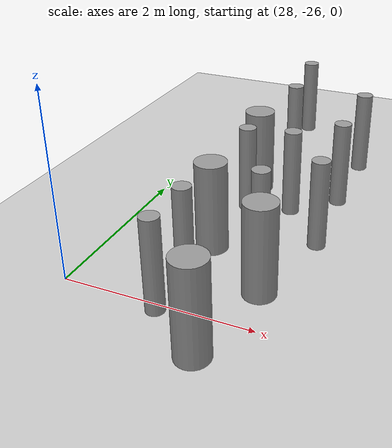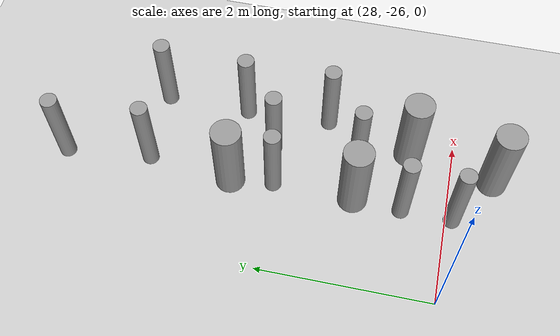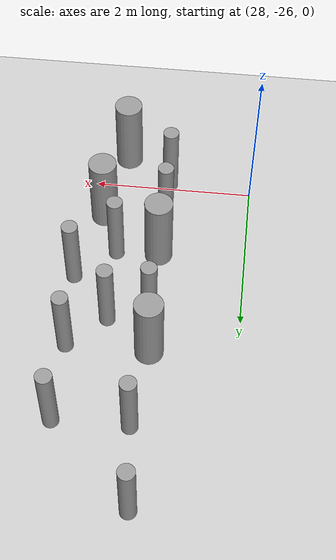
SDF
<sdf version="1.6">
 <world name="default">
  <model name="ground_plane">
   <static>1</static>
   <link name="link">
    <collision name="collision">
     <geometry><plane><normal>0 0 1</normal><size>100 100</size></plane></geometry>
     <surface><friction><ode><mu>100</mu><mu2>50</mu2></ode></friction></surface>
    </collision>
    <visual name="visual">
     <cast_shadows>0</cast_shadows>
     <geometry><plane><normal>0 0 1</normal><size>100 100</size></plane></geometry>
     <material>
      <script><uri>file://media/materials/scripts/gazebo.material</uri><name>Gazebo/Grey</name></script>
     </material>
    </visual>
   </link>
  </model>
  <model name="cyl_wall_clone_clone_1_clone_1_clone_clone_clone_0">
   <link name="link_0">
    <pose>-2.73893 -0.366465 0 0 -0 0</pose>
    <inertial>
     <mass>0.0374993</mass>
     <inertia>
      <ixx>0.00321281</ixx>
      <ixy>0</ixy>
      <ixz>0</ixz>
      <iyy>0.00321281</iyy>
      <iyz>0</iyz>
      <izz>0.000175774</izz>
     </inertia>
    </inertial>
    <visual name="visual">
     <geometry><cylinder><radius>0.0968661</radius><length>1</length></cylinder></geometry>
     <material>
      <lighting>1</lighting>
      <script><uri>file://media/materials/scripts/gazebo.material</uri><name>Gazebo/Grey</name></script>
      <ambient>0.3 0.3 0.3 1</ambient>
      <diffuse>0.7 0.7 0.7 1</diffuse>
      <specular>0.01 0.01 0.01 1</specular>
      <emissive>0 0 0 1</emissive>
     </material>
    </visual>
    <collision name="collision">
     <geometry><cylinder><radius>0.096866</radius><length>1</length></cylinder></geometry>
     <surface>
      <friction>
       <ode><mu>1</mu><mu2>1</mu2><fdir1>0 0 0</fdir1><slip1>0</slip1><slip2>0</slip2></ode>
       <torsional>
        <coefficient>1</coefficient>
        <patch_radius>0</patch_radius>
        <surface_radius>0</surface_radius>
        <use_patch_radius>1</use_patch_radius>
        <ode><slip>0</slip></ode>
       </torsional>
      </friction>
      <bounce><restitution_coefficient>0</restitution_coefficient><threshold>1e+06</threshold></bounce>
      <contact>
       <collide_without_contact>0</collide_without_contact>
       <collide_without_contact_bitmask>1</collide_without_contact_bitmask>
       <collide_bitmask>1</collide_bitmask>
       <ode>
        <soft_cfm>0</soft_cfm>
        <soft_erp>0.2</soft_erp>
        <kp>1e+13</kp>
        <kd>1</kd>
        <max_vel>0.01</max_vel>
        <min_depth>0</min_depth>
       </ode>
       <bullet>
        <split_impulse>1</split_impulse>
        <split_impulse_penetration_threshold>-0.01</split_impulse_penetration_threshold>
        <soft_cfm>0</soft_cfm>
        <soft_erp>0.2</soft_erp>
        <kp>1e+13</kp>
        <kd>1</kd>
       </bullet>
      </contact>
     </surface>
    </collision>
   </link>
   <link name="link_0_clone">
    <pose>-1.73893 0.61877 0 0 -0 0</pose>
    <inertial>
     <mass>0.0374993</mass>
     <inertia>
      <ixx>0.00321281</ixx>
      <ixy>0</ixy>
      <ixz>0</ixz>
      <iyy>0.00321281</iyy>
      <iyz>0</iyz>
      <izz>0.000175774</izz>
     </inertia>
    </inertial>
    <visual name="visual">
     <geometry><cylinder><radius>0.0968661</radius><length>1</length></cylinder></geometry>
     <material>
      <lighting>1</lighting>
      <script><uri>file://media/materials/scripts/gazebo.material</uri><name>Gazebo/Grey</name></script>
      <ambient>0.3 0.3 0.3 1</ambient>
      <diffuse>0.7 0.7 0.7 1</diffuse>
      <specular>0.01 0.01 0.01 1</specular>
      <emissive>0 0 0 1</emissive>
      <shader type="pixel"/>
     </material>
    </visual>
    <collision name="collision">
     <geometry><cylinder><radius>0.096866</radius><length>1</length></cylinder></geometry>
     <surface>
      <friction>
       <ode><mu>1</mu><mu2>1</mu2><fdir1>0 0 0</fdir1><slip1>0</slip1><slip2>0</slip2></ode>
       <torsional>
        <coefficient>1</coefficient>
        <patch_radius>0</patch_radius>
        <surface_radius>0</surface_radius>
        <use_patch_radius>1</use_patch_radius>
        <ode><slip>0</slip></ode>
       </torsional>
      </friction>
      <bounce><restitution_coefficient>0</restitution_coefficient><threshold>1e+06</threshold></bounce>
      <contact>
       <collide_without_contact>0</collide_without_contact>
       <collide_without_contact_bitmask>1</collide_without_contact_bitmask>
       <collide_bitmask>1</collide_bitmask>
       <ode>
        <soft_cfm>0</soft_cfm>
        <soft_erp>0.2</soft_erp>
        <kp>1e+13</kp>
        <kd>1</kd>
        <max_vel>0.01</max_vel>
        <min_depth>0</min_depth>
       </ode>
       <bullet>
        <split_impulse>1</split_impulse>
        <split_impulse_penetration_threshold>-0.01</split_impulse_penetration_threshold>
        <soft_cfm>0</soft_cfm>
        <soft_erp>0.2</soft_erp>
        <kp>1e+13</kp>
        <kd>1</kd>
       </bullet>
      </contact>
     </surface>
    </collision>
   </link>
   <link name="link_0_clone_clone">
    <pose>-0.327073 0.143919 0 0 -0 0</pose>
    <inertial>
     <mass>0.0374993</mass>
     <inertia>
      <ixx>0.00321281</ixx>
      <ixy>0</ixy>
      <ixz>0</ixz>
      <iyy>0.00321281</iyy>
      <iyz>0</iyz>
      <izz>0.000175774</izz>
     </inertia>
    </inertial>
    <visual name="visual">
     <geometry><cylinder><radius>0.0968661</radius><length>1</length></cylinder></geometry>
     <material>
      <lighting>1</lighting>
      <script><uri>file://media/materials/scripts/gazebo.material</uri><name>Gazebo/Grey</name></script>
      <ambient>0.3 0.3 0.3 1</ambient>
      <diffuse>0.7 0.7 0.7 1</diffuse>
      <specular>0.01 0.01 0.01 1</specular>
      <emissive>0 0 0 1</emissive>
      <shader type="pixel"/>
     </material>
    </visual>
    <collision name="collision">
     <geometry><cylinder><radius>0.096866</radius><length>1</length></cylinder></geometry>
     <surface>
      <friction>
       <ode><mu>1</mu><mu2>1</mu2><fdir1>0 0 0</fdir1><slip1>0</slip1><slip2>0</slip2></ode>
       <torsional>
        <coefficient>1</coefficient>
        <patch_radius>0</patch_radius>
        <surface_radius>0</surface_radius>
        <use_patch_radius>1</use_patch_radius>
        <ode><slip>0</slip></ode>
       </torsional>
      </friction>
      <bounce><restitution_coefficient>0</restitution_coefficient><threshold>1e+06</threshold></bounce>
      <contact>
       <collide_without_contact>0</collide_without_contact>
       <collide_without_contact_bitmask>1</collide_without_contact_bitmask>
       <collide_bitmask>1</collide_bitmask>
       <ode>
        <soft_cfm>0</soft_cfm>
        <soft_erp>0.2</soft_erp>
        <kp>1e+13</kp>
        <kd>1</kd>
        <max_vel>0.01</max_vel>
        <min_depth>0</min_depth>
       </ode>
       <bullet>
        <split_impulse>1</split_impulse>
        <split_impulse_penetration_threshold>-0.01</split_impulse_penetration_threshold>
        <soft_cfm>0</soft_cfm>
        <soft_erp>0.2</soft_erp>
        <kp>1e+13</kp>
        <kd>1</kd>
       </bullet>
      </contact>
     </surface>
    </collision>
   </link>
   <link name="link_0_clone_clone_0">
    <pose>1.26107 -0.419359 0 0 -0 0</pose>
    <inertial>
     <mass>0.0374993</mass>
     <inertia>
      <ixx>0.00321281</ixx>
      <ixy>0</ixy>
      <ixz>0</ixz>
      <iyy>0.00321281</iyy>
      <iyz>0</iyz>
      <izz>0.000175774</izz>
     </inertia>
    </inertial>
    <visual name="visual">
     <geometry><cylinder><radius>0.0968661</radius><length>1</length></cylinder></geometry>
     <material>
      <lighting>1</lighting>
      <script><uri>file://media/materials/scripts/gazebo.material</uri><name>Gazebo/Grey</name></script>
      <ambient>0.3 0.3 0.3 1</ambient>
      <diffuse>0.7 0.7 0.7 1</diffuse>
      <specular>0.01 0.01 0.01 1</specular>
      <emissive>0 0 0 1</emissive>
      <shader type="pixel"/>
     </material>
    </visual>
    <collision name="collision">
     <geometry><cylinder><radius>0.096866</radius><length>1</length></cylinder></geometry>
     <surface>
      <friction>
       <ode><mu>1</mu><mu2>1</mu2><fdir1>0 0 0</fdir1><slip1>0</slip1><slip2>0</slip2></ode>
       <torsional>
        <coefficient>1</coefficient>
        <patch_radius>0</patch_radius>
        <surface_radius>0</surface_radius>
        <use_patch_radius>1</use_patch_radius>
        <ode><slip>0</slip></ode>
       </torsional>
      </friction>
      <bounce><restitution_coefficient>0</restitution_coefficient><threshold>1e+06</threshold></bounce>
      <contact>
       <collide_without_contact>0</collide_without_contact>
       <collide_without_contact_bitmask>1</collide_without_contact_bitmask>
       <collide_bitmask>1</collide_bitmask>
       <ode>
        <soft_cfm>0</soft_cfm>
        <soft_erp>0.2</soft_erp>
        <kp>1e+13</kp>
        <kd>1</kd>
        <max_vel>0.01</max_vel>
        <min_depth>0</min_depth>
       </ode>
       <bullet>
        <split_impulse>1</split_impulse>
        <split_impulse_penetration_threshold>-0.01</split_impulse_penetration_threshold>
        <soft_cfm>0</soft_cfm>
        <soft_erp>0.2</soft_erp>
        <kp>1e+13</kp>
        <kd>1</kd>
       </bullet>
      </contact>
     </surface>
    </collision>
   </link>
   <link name="link_0_clone_clone_1">
    <pose>-1.73893 -0.277168 0 0 -0 0</pose>
    <inertial>
     <mass>0.0374993</mass>
     <inertia>
      <ixx>0.00321281</ixx>
      <ixy>0</ixy>
      <ixz>0</ixz>
      <iyy>0.00321281</iyy>
      <iyz>0</iyz>
      <izz>0.000175774</izz>
     </inertia>
    </inertial>
    <visual name="visual">
     <geometry><cylinder><radius>0.0968661</radius><length>1</length></cylinder></geometry>
     <material>
      <lighting>1</lighting>
      <script><uri>file://media/materials/scripts/gazebo.material</uri><name>Gazebo/Grey</name></script>
      <ambient>0.3 0.3 0.3 1</ambient>
      <diffuse>0.7 0.7 0.7 1</diffuse>
      <specular>0.01 0.01 0.01 1</specular>
      <emissive>0 0 0 1</emissive>
      <shader type="pixel"/>
     </material>
    </visual>
    <collision name="collision">
     <geometry><cylinder><radius>0.096866</radius><length>1</length></cylinder></geometry>
     <surface>
      <friction>
       <ode><mu>1</mu><mu2>1</mu2><fdir1>0 0 0</fdir1><slip1>0</slip1><slip2>0</slip2></ode>
       <torsional>
        <coefficient>1</coefficient>
        <patch_radius>0</patch_radius>
        <surface_radius>0</surface_radius>
        <use_patch_radius>1</use_patch_radius>
        <ode><slip>0</slip></ode>
       </torsional>
      </friction>
      <bounce><restitution_coefficient>0</restitution_coefficient><threshold>1e+06</threshold></bounce>
      <contact>
       <collide_without_contact>0</collide_without_contact>
       <collide_without_contact_bitmask>1</collide_without_contact_bitmask>
       <collide_bitmask>1</collide_bitmask>
       <ode>
        <soft_cfm>0</soft_cfm>
        <soft_erp>0.2</soft_erp>
        <kp>1e+13</kp>
        <kd>1</kd>
        <max_vel>0.01</max_vel>
        <min_depth>0</min_depth>
       </ode>
       <bullet>
        <split_impulse>1</split_impulse>
        <split_impulse_penetration_threshold>-0.01</split_impulse_penetration_threshold>
        <soft_cfm>0</soft_cfm>
        <soft_erp>0.2</soft_erp>
        <kp>1e+13</kp>
        <kd>1</kd>
       </bullet>
      </contact>
     </surface>
    </collision>
   </link>
   <link name="link_0_clone_clone_2">
    <pose>-0.738934 0.593961 0 0 -0 0</pose>
    <inertial>
     <mass>0.0374993</mass>
     <inertia>
      <ixx>0.00321281</ixx>
      <ixy>0</ixy>
      <ixz>0</ixz>
      <iyy>0.00321281</iyy>
      <iyz>0</iyz>
      <izz>0.000175774</izz>
     </inertia>
    </inertial>
    <visual name="visual">
     <geometry><cylinder><radius>0.0968661</radius><length>1</length></cylinder></geometry>
     <material>
      <lighting>1</lighting>
      <script><uri>file://media/materials/scripts/gazebo.material</uri><name>Gazebo/Grey</name></script>
      <ambient>0.3 0.3 0.3 1</ambient>
      <diffuse>0.7 0.7 0.7 1</diffuse>
      <specular>0.01 0.01 0.01 1</specular>
      <emissive>0 0 0 1</emissive>
      <shader type="pixel"/>
     </material>
    </visual>
    <collision name="collision">
     <geometry><cylinder><radius>0.096866</radius><length>1</length></cylinder></geometry>
     <surface>
      <friction>
       <ode><mu>1</mu><mu2>1</mu2><fdir1>0 0 0</fdir1><slip1>0</slip1><slip2>0</slip2></ode>
       <torsional>
        <coefficient>1</coefficient>
        <patch_radius>0</patch_radius>
        <surface_radius>0</surface_radius>
        <use_patch_radius>1</use_patch_radius>
        <ode><slip>0</slip></ode>
       </torsional>
      </friction>
      <bounce><restitution_coefficient>0</restitution_coefficient><threshold>1e+06</threshold></bounce>
      <contact>
       <collide_without_contact>0</collide_without_contact>
       <collide_without_contact_bitmask>1</collide_without_contact_bitmask>
       <collide_bitmask>1</collide_bitmask>
       <ode>
        <soft_cfm>0</soft_cfm>
        <soft_erp>0.2</soft_erp>
        <kp>1e+13</kp>
        <kd>1</kd>
        <max_vel>0.01</max_vel>
        <min_depth>0</min_depth>
       </ode>
       <bullet>
        <split_impulse>1</split_impulse>
        <split_impulse_penetration_threshold>-0.01</split_impulse_penetration_threshold>
        <soft_cfm>0</soft_cfm>
        <soft_erp>0.2</soft_erp>
        <kp>1e+13</kp>
        <kd>1</kd>
       </bullet>
      </contact>
     </surface>
    </collision>
   </link>
   <link name="link_0_clone_clone_3">
    <pose>0.261066 0.624849 0 0 -0 0</pose>
    <inertial>
     <mass>0.0374993</mass>
     <inertia>
      <ixx>0.00321281</ixx>
      <ixy>0</ixy>
      <ixz>0</ixz>
      <iyy>0.00321281</iyy>
      <iyz>0</iyz>
      <izz>0.000175774</izz>
     </inertia>
    </inertial>
    <visual name="visual">
     <geometry><cylinder><radius>0.0968661</radius><length>1</length></cylinder></geometry>
     <material>
      <lighting>1</lighting>
      <script><uri>file://media/materials/scripts/gazebo.material</uri><name>Gazebo/Grey</name></script>
      <ambient>0.3 0.3 0.3 1</ambient>
      <diffuse>0.7 0.7 0.7 1</diffuse>
      <specular>0.01 0.01 0.01 1</specular>
      <emissive>0 0 0 1</emissive>
      <shader type="pixel"/>
     </material>
    </visual>
    <collision name="collision">
     <geometry><cylinder><radius>0.096866</radius><length>1</length></cylinder></geometry>
     <surface>
      <friction>
       <ode><mu>1</mu><mu2>1</mu2><fdir1>0 0 0</fdir1><slip1>0</slip1><slip2>0</slip2></ode>
       <torsional>
        <coefficient>1</coefficient>
        <patch_radius>0</patch_radius>
        <surface_radius>0</surface_radius>
        <use_patch_radius>1</use_patch_radius>
        <ode><slip>0</slip></ode>
       </torsional>
      </friction>
      <bounce><restitution_coefficient>0</restitution_coefficient><threshold>1e+06</threshold></bounce>
      <contact>
       <collide_without_contact>0</collide_without_contact>
       <collide_without_contact_bitmask>1</collide_without_contact_bitmask>
       <collide_bitmask>1</collide_bitmask>
       <ode>
        <soft_cfm>0</soft_cfm>
        <soft_erp>0.2</soft_erp>
        <kp>1e+13</kp>
        <kd>1</kd>
        <max_vel>0.01</max_vel>
        <min_depth>0</min_depth>
       </ode>
       <bullet>
        <split_impulse>1</split_impulse>
        <split_impulse_penetration_threshold>-0.01</split_impulse_penetration_threshold>
        <soft_cfm>0</soft_cfm>
        <soft_erp>0.2</soft_erp>
        <kp>1e+13</kp>
        <kd>1</kd>
       </bullet>
      </contact>
     </surface>
    </collision>
   </link>
   <link name="link_0_clone_clone_4">
    <pose>-0.239049 -0.353105 0 0 -0 0</pose>
    <inertial>
     <mass>0.0374993</mass>
     <inertia>
      <ixx>0.00321281</ixx>
      <ixy>0</ixy>
      <ixz>0</ixz>
      <iyy>0.00321281</iyy>
      <iyz>0</iyz>
      <izz>0.000175774</izz>
     </inertia>
    </inertial>
    <visual name="visual">
     <geometry><cylinder><radius>0.0968661</radius><length>1</length></cylinder></geometry>
     <material>
      <lighting>1</lighting>
      <script><uri>file://media/materials/scripts/gazebo.material</uri><name>Gazebo/Grey</name></script>
      <ambient>0.3 0.3 0.3 1</ambient>
      <diffuse>0.7 0.7 0.7 1</diffuse>
      <specular>0.01 0.01 0.01 1</specular>
      <emissive>0 0 0 1</emissive>
      <shader type="pixel"/>
     </material>
    </visual>
    <collision name="collision">
     <geometry><cylinder><radius>0.096866</radius><length>1</length></cylinder></geometry>
     <surface>
      <friction>
       <ode><mu>1</mu><mu2>1</mu2><fdir1>0 0 0</fdir1><slip1>0</slip1><slip2>0</slip2></ode>
       <torsional>
        <coefficient>1</coefficient>
        <patch_radius>0</patch_radius>
        <surface_radius>0</surface_radius>
        <use_patch_radius>1</use_patch_radius>
        <ode><slip>0</slip></ode>
       </torsional>
      </friction>
      <bounce><restitution_coefficient>0</restitution_coefficient><threshold>1e+06</threshold></bounce>
      <contact>
       <collide_without_contact>0</collide_without_contact>
       <collide_without_contact_bitmask>1</collide_without_contact_bitmask>
       <collide_bitmask>1</collide_bitmask>
       <ode>
        <soft_cfm>0</soft_cfm>
        <soft_erp>0.2</soft_erp>
        <kp>1e+13</kp>
        <kd>1</kd>
        <max_vel>0.01</max_vel>
        <min_depth>0</min_depth>
       </ode>
       <bullet>
        <split_impulse>1</split_impulse>
        <split_impulse_penetration_threshold>-0.01</split_impulse_penetration_threshold>
        <soft_cfm>0</soft_cfm>
        <soft_erp>0.2</soft_erp>
        <kp>1e+13</kp>
        <kd>1</kd>
       </bullet>
      </contact>
     </surface>
    </collision>
   </link>
   <link name="link_0_clone_clone_5">
    <pose>0.672792 0.143919 0 0 -0 0</pose>
    <inertial>
     <mass>0.0374993</mass>
     <inertia>
      <ixx>0.00321281</ixx>
      <ixy>0</ixy>
      <ixz>0</ixz>
      <iyy>0.00321281</iyy>
      <iyz>0</iyz>
      <izz>0.000175774</izz>
     </inertia>
    </inertial>
    <visual name="visual">
     <geometry><cylinder><radius>0.0968661</radius><length>1</length></cylinder></geometry>
     <material>
      <lighting>1</lighting>
      <script><uri>file://media/materials/scripts/gazebo.material</uri><name>Gazebo/Grey</name></script>
      <ambient>0.3 0.3 0.3 1</ambient>
      <diffuse>0.7 0.7 0.7 1</diffuse>
      <specular>0.01 0.01 0.01 1</specular>
      <emissive>0 0 0 1</emissive>
      <shader type="pixel"/>
     </material>
    </visual>
    <collision name="collision">
     <geometry><cylinder><radius>0.096866</radius><length>1</length></cylinder></geometry>
     <surface>
      <friction>
       <ode><mu>1</mu><mu2>1</mu2><fdir1>0 0 0</fdir1><slip1>0</slip1><slip2>0</slip2></ode>
       <torsional>
        <coefficient>1</coefficient>
        <patch_radius>0</patch_radius>
        <surface_radius>0</surface_radius>
        <use_patch_radius>1</use_patch_radius>
        <ode><slip>0</slip></ode>
       </torsional>
      </friction>
      <bounce><restitution_coefficient>0</restitution_coefficient><threshold>1e+06</threshold></bounce>
      <contact>
       <collide_without_contact>0</collide_without_contact>
       <collide_without_contact_bitmask>1</collide_without_contact_bitmask>
       <collide_bitmask>1</collide_bitmask>
       <ode>
        <soft_cfm>0</soft_cfm>
        <soft_erp>0.2</soft_erp>
        <kp>1e+13</kp>
        <kd>1</kd>
        <max_vel>0.01</max_vel>
        <min_depth>0</min_depth>
       </ode>
       <bullet>
        <split_impulse>1</split_impulse>
        <split_impulse_penetration_threshold>-0.01</split_impulse_penetration_threshold>
        <soft_cfm>0</soft_cfm>
        <soft_erp>0.2</soft_erp>
        <kp>1e+13</kp>
        <kd>1</kd>
       </bullet>
      </contact>
     </surface>
    </collision>
   </link>
   <link name="link_0_clone_clone_6">
    <pose>1.84596 -0.433423 0 0 -0 0</pose>
    <inertial>
     <mass>0.0374993</mass>
     <inertia>
      <ixx>0.00321281</ixx>
      <ixy>0</ixy>
      <ixz>0</ixz>
      <iyy>0.00321281</iyy>
      <iyz>0</iyz>
      <izz>0.000175774</izz>
     </inertia>
    </inertial>
    <visual name="visual">
     <geometry><cylinder><radius>0.0968661</radius><length>1</length></cylinder></geometry>
     <material>
      <lighting>1</lighting>
      <script><uri>file://media/materials/scripts/gazebo.material</uri><name>Gazebo/Grey</name></script>
      <ambient>0.3 0.3 0.3 1</ambient>
      <diffuse>0.7 0.7 0.7 1</diffuse>
      <specular>0.01 0.01 0.01 1</specular>
      <emissive>0 0 0 1</emissive>
      <shader type="pixel"/>
     </material>
    </visual>
    <collision name="collision">
     <geometry><cylinder><radius>0.096866</radius><length>1</length></cylinder></geometry>
     <surface>
      <friction>
       <ode><mu>1</mu><mu2>1</mu2><fdir1>0 0 0</fdir1><slip1>0</slip1><slip2>0</slip2></ode>
       <torsional>
        <coefficient>1</coefficient>
        <patch_radius>0</patch_radius>
        <surface_radius>0</surface_radius>
        <use_patch_radius>1</use_patch_radius>
        <ode><slip>0</slip></ode>
       </torsional>
      </friction>
      <bounce><restitution_coefficient>0</restitution_coefficient><threshold>1e+06</threshold></bounce>
      <contact>
       <collide_without_contact>0</collide_without_contact>
       <collide_without_contact_bitmask>1</collide_without_contact_bitmask>
       <collide_bitmask>1</collide_bitmask>
       <ode>
        <soft_cfm>0</soft_cfm>
        <soft_erp>0.2</soft_erp>
        <kp>1e+13</kp>
        <kd>1</kd>
        <max_vel>0.01</max_vel>
        <min_depth>0</min_depth>
       </ode>
       <bullet>
        <split_impulse>1</split_impulse>
        <split_impulse_penetration_threshold>-0.01</split_impulse_penetration_threshold>
        <soft_cfm>0</soft_cfm>
        <soft_erp>0.2</soft_erp>
        <kp>1e+13</kp>
        <kd>1</kd>
       </bullet>
      </contact>
     </surface>
    </collision>
   </link>
   <link name="link_1">
    <pose>-0.738934 -0.397931 0 0 -0 0</pose>
    <inertial>
     <mass>0.117398</mass>
     <inertia>
      <ixx>0.0106445</ixx>
      <ixy>0</ixy>
      <ixz>0</ixz>
      <iyy>0.0106445</iyy>
      <iyz>0</iyz>
      <izz>0.00172278</izz>
     </inertia>
    </inertial>
    <visual name="visual">
     <geometry><cylinder><radius>0.171317</radius><length>1</length></cylinder></geometry>
     <material>
      <lighting>1</lighting>
      <script><uri>file://media/materials/scripts/gazebo.material</uri><name>Gazebo/Grey</name></script>
      <ambient>0.3 0.3 0.3 1</ambient>
      <diffuse>0.7 0.7 0.7 1</diffuse>
      <specular>0.01 0.01 0.01 1</specular>
      <emissive>0 0 0 1</emissive>
     </material>
    </visual>
    <collision name="collision">
     <geometry><cylinder><radius>0.171317</radius><length>1</length></cylinder></geometry>
     <surface>
      <friction>
       <ode><mu>1</mu><mu2>1</mu2><fdir1>0 0 0</fdir1><slip1>0</slip1><slip2>0</slip2></ode>
       <torsional>
        <coefficient>1</coefficient>
        <patch_radius>0</patch_radius>
        <surface_radius>0</surface_radius>
        <use_patch_radius>1</use_patch_radius>
        <ode><slip>0</slip></ode>
       </torsional>
      </friction>
      <bounce><restitution_coefficient>0</restitution_coefficient><threshold>1e+06</threshold></bounce>
      <contact>
       <collide_without_contact>0</collide_without_contact>
       <collide_without_contact_bitmask>1</collide_without_contact_bitmask>
       <collide_bitmask>1</collide_bitmask>
       <ode>
        <soft_cfm>0</soft_cfm>
        <soft_erp>0.2</soft_erp>
        <kp>1e+13</kp>
        <kd>1</kd>
        <max_vel>0.01</max_vel>
        <min_depth>0</min_depth>
       </ode>
       <bullet>
        <split_impulse>1</split_impulse>
        <split_impulse_penetration_threshold>-0.01</split_impulse_penetration_threshold>
        <soft_cfm>0</soft_cfm>
        <soft_erp>0.2</soft_erp>
        <kp>1e+13</kp>
        <kd>1</kd>
       </bullet>
      </contact>
     </surface>
    </collision>
   </link>
   <link name="link_1_clone">
    <pose>0.697784 -0.380861 0 0 -0 0</pose>
    <inertial>
     <mass>0.117398</mass>
     <inertia>
      <ixx>0.0106445</ixx>
      <ixy>0</ixy>
      <ixz>0</ixz>
      <iyy>0.0106445</iyy>
      <iyz>0</iyz>
      <izz>0.00172278</izz>
     </inertia>
    </inertial>
    <visual name="visual">
     <geometry><cylinder><radius>0.171317</radius><length>1</length></cylinder></geometry>
     <material>
      <lighting>1</lighting>
      <script><uri>file://media/materials/scripts/gazebo.material</uri><name>Gazebo/Grey</name></script>
      <ambient>0.3 0.3 0.3 1</ambient>
      <diffuse>0.7 0.7 0.7 1</diffuse>
      <specular>0.01 0.01 0.01 1</specular>
      <emissive>0 0 0 1</emissive>
      <shader type="pixel"/>
     </material>
    </visual>
    <collision name="collision">
     <geometry><cylinder><radius>0.171317</radius><length>1</length></cylinder></geometry>
     <surface>
      <friction>
       <ode><mu>1</mu><mu2>1</mu2><fdir1>0 0 0</fdir1><slip1>0</slip1><slip2>0</slip2></ode>
       <torsional>
        <coefficient>1</coefficient>
        <patch_radius>0</patch_radius>
        <surface_radius>0</surface_radius>
        <use_patch_radius>1</use_patch_radius>
        <ode><slip>0</slip></ode>
       </torsional>
      </friction>
      <bounce><restitution_coefficient>0</restitution_coefficient><threshold>1e+06</threshold></bounce>
      <contact>
       <collide_without_contact>0</collide_without_contact>
       <collide_without_contact_bitmask>1</collide_without_contact_bitmask>
       <collide_bitmask>1</collide_bitmask>
       <ode>
        <soft_cfm>0</soft_cfm>
        <soft_erp>0.2</soft_erp>
        <kp>1e+13</kp>
        <kd>1</kd>
        <max_vel>0.01</max_vel>
        <min_depth>0</min_depth>
       </ode>
       <bullet>
        <split_impulse>1</split_impulse>
        <split_impulse_penetration_threshold>-0.01</split_impulse_penetration_threshold>
        <soft_cfm>0</soft_cfm>
        <soft_erp>0.2</soft_erp>
        <kp>1e+13</kp>
        <kd>1</kd>
       </bullet>
      </contact>
     </surface>
    </collision>
   </link>
   <link name="link_1_clone_0">
    <pose>1.26107 0.358974 0 0 -0 0</pose>
    <inertial>
     <mass>0.117398</mass>
     <inertia>
      <ixx>0.0106445</ixx>
      <ixy>0</ixy>
      <ixz>0</ixz>
      <iyy>0.0106445</iyy>
      <iyz>0</iyz>
      <izz>0.00172278</izz>
     </inertia>
    </inertial>
    <visual name="visual">
     <geometry><cylinder><radius>0.171317</radius><length>1</length></cylinder></geometry>
     <material>
      <lighting>1</lighting>
      <script><uri>file://media/materials/scripts/gazebo.material</uri><name>Gazebo/Grey</name></script>
      <ambient>0.3 0.3 0.3 1</ambient>
      <diffuse>0.7 0.7 0.7 1</diffuse>
      <specular>0.01 0.01 0.01 1</specular>
      <emissive>0 0 0 1</emissive>
      <shader type="pixel"/>
     </material>
    </visual>
    <collision name="collision">
     <geometry><cylinder><radius>0.171317</radius><length>1</length></cylinder></geometry>
     <surface>
      <friction>
       <ode><mu>1</mu><mu2>1</mu2><fdir1>0 0 0</fdir1><slip1>0</slip1><slip2>0</slip2></ode>
       <torsional>
        <coefficient>1</coefficient>
        <patch_radius>0</patch_radius>
        <surface_radius>0</surface_radius>
        <use_patch_radius>1</use_patch_radius>
        <ode><slip>0</slip></ode>
       </torsional>
      </friction>
      <bounce><restitution_coefficient>0</restitution_coefficient><threshold>1e+06</threshold></bounce>
      <contact>
       <collide_without_contact>0</collide_without_contact>
       <collide_without_contact_bitmask>1</collide_without_contact_bitmask>
       <collide_bitmask>1</collide_bitmask>
       <ode>
        <soft_cfm>0</soft_cfm>
        <soft_erp>0.2</soft_erp>
        <kp>1e+13</kp>
        <kd>1</kd>
        <max_vel>0.01</max_vel>
        <min_depth>0</min_depth>
       </ode>
       <bullet>
        <split_impulse>1</split_impulse>
        <split_impulse_penetration_threshold>-0.01</split_impulse_penetration_threshold>
        <soft_cfm>0</soft_cfm>
        <soft_erp>0.2</soft_erp>
        <kp>1e+13</kp>
        <kd>1</kd>
       </bullet>
      </contact>
     </surface>
    </collision>
   </link>
   <link name="link_1_clone_1">
    <pose>2.26107 0.143919 0 0 -0 0</pose>
    <inertial>
     <mass>0.117398</mass>
     <inertia>
      <ixx>0.0106445</ixx>
      <ixy>0</ixy>
      <ixz>0</ixz>
      <iyy>0.0106445</iyy>
      <iyz>0</iyz>
      <izz>0.00172278</izz>
     </inertia>
    </inertial>
    <visual name="visual">
     <geometry><cylinder><radius>0.171317</radius><length>1</length></cylinder></geometry>
     <material>
      <lighting>1</lighting>
      <script><uri>file://media/materials/scripts/gazebo.material</uri><name>Gazebo/Grey</name></script>
      <ambient>0.3 0.3 0.3 1</ambient>
      <diffuse>0.7 0.7 0.7 1</diffuse>
      <specular>0.01 0.01 0.01 1</specular>
      <emissive>0 0 0 1</emissive>
      <shader type="pixel"/>
     </material>
    </visual>
    <collision name="collision">
     <geometry><cylinder><radius>0.171317</radius><length>1</length></cylinder></geometry>
     <surface>
      <friction>
       <ode><mu>1</mu><mu2>1</mu2><fdir1>0 0 0</fdir1><slip1>0</slip1><slip2>0</slip2></ode>
       <torsional>
        <coefficient>1</coefficient>
        <patch_radius>0</patch_radius>
        <surface_radius>0</surface_radius>
        <use_patch_radius>1</use_patch_radius>
        <ode><slip>0</slip></ode>
       </torsional>
      </friction>
      <bounce><restitution_coefficient>0</restitution_coefficient><threshold>1e+06</threshold></bounce>
      <contact>
       <collide_without_contact>0</collide_without_contact>
       <collide_without_contact_bitmask>1</collide_without_contact_bitmask>
       <collide_bitmask>1</collide_bitmask>
       <ode>
        <soft_cfm>0</soft_cfm>
        <soft_erp>0.2</soft_erp>
        <kp>1e+13</kp>
        <kd>1</kd>
        <max_vel>0.01</max_vel>
        <min_depth>0</min_depth>
       </ode>
       <bullet>
        <split_impulse>1</split_impulse>
        <split_impulse_penetration_threshold>-0.01</split_impulse_penetration_threshold>
        <soft_cfm>0</soft_cfm>
        <soft_erp>0.2</soft_erp>
        <kp>1e+13</kp>
        <kd>1</kd>
       </bullet>
      </contact>
     </surface>
    </collision>
   </link>
   <static>1</static>
   <pose>29.4543 -24.2222 0.5 0 0 -1.55814</pose>
  </model>
 </world>
</sdf>
